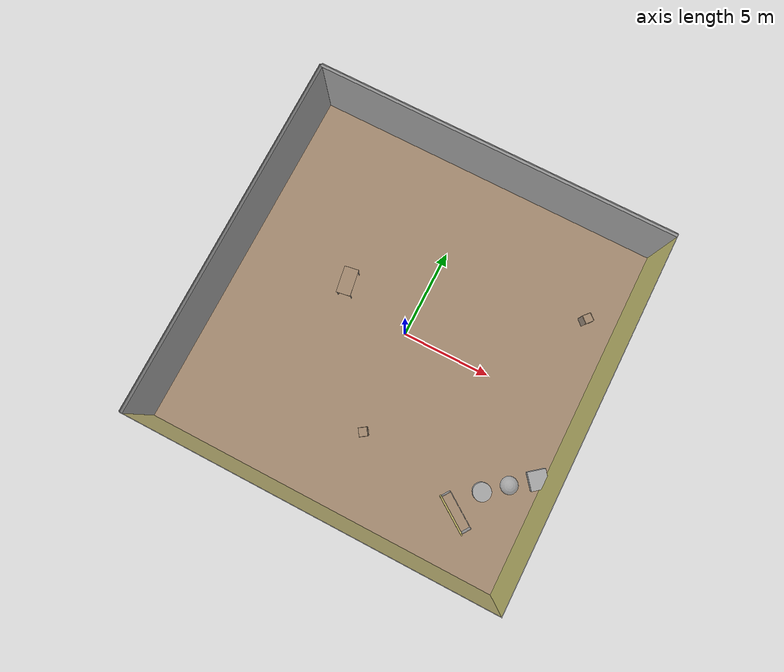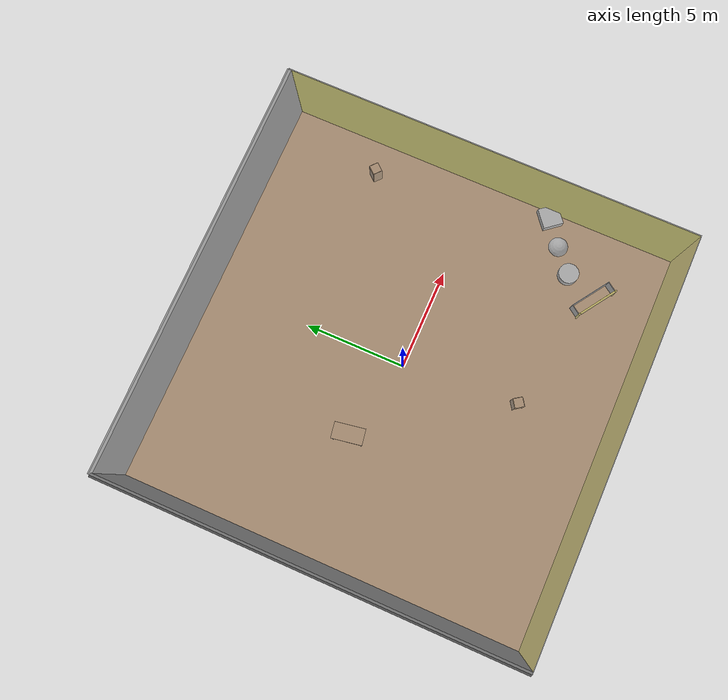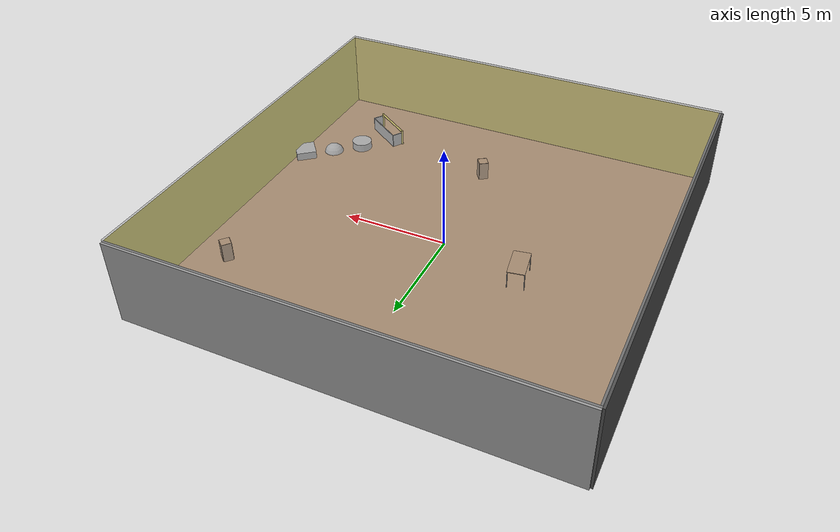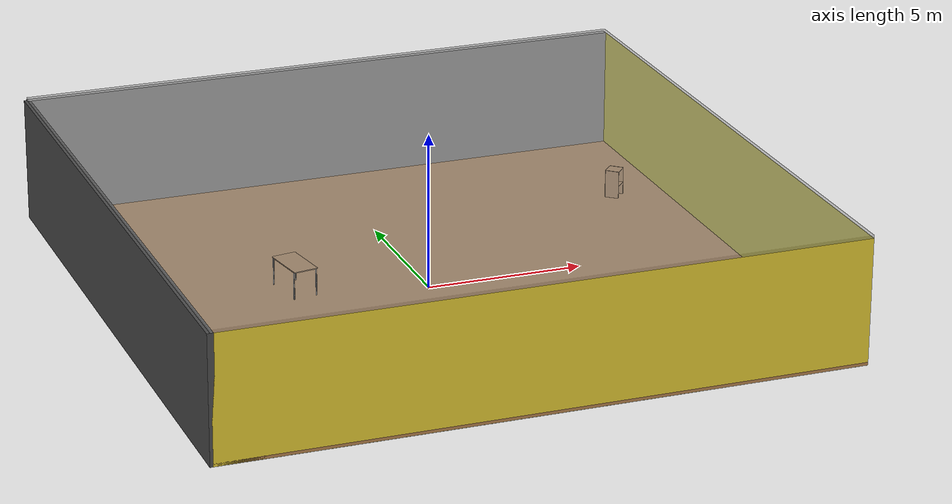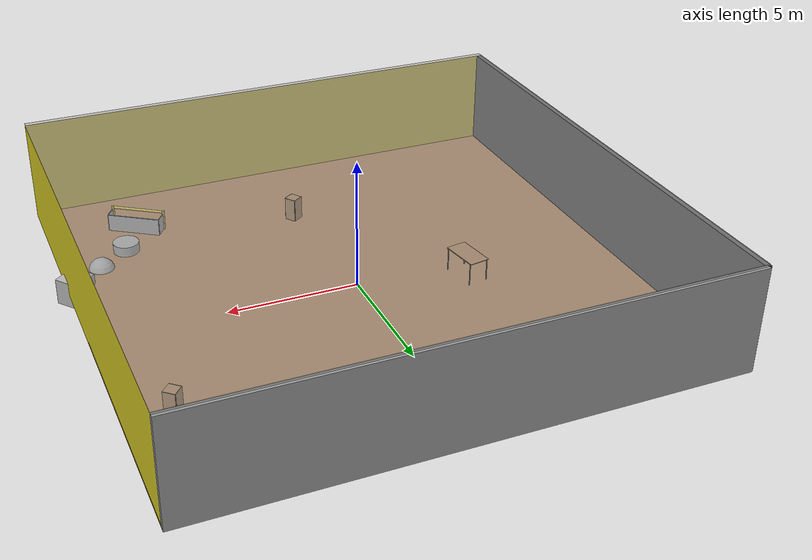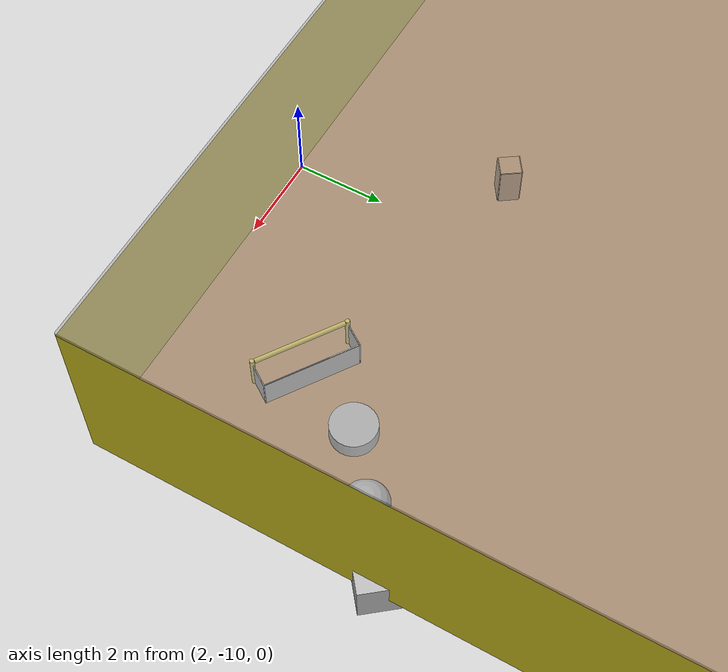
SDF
<sdf version="1.4">
 <world name="default">
  <physics type="ode">
   <max_step_size>0.001</max_step_size>
   <real_time_factor>1</real_time_factor>
   <real_time_update_rate>1000</real_time_update_rate>
   <gravity>0 0 -9.8</gravity>
  </physics>
  <scene><ambient>0.4 0.4 0.4 1</ambient><background>0.7 0.7 0.7 1</background><shadows>1</shadows></scene>
  <model name="Surrounding">
   <static>1</static>
   <link name="Ceiling">
    <collision name="Ceiling_Collision"><geometry><box><size>20 20 0.1</size></box></geometry></collision>
    <visual name="Ceiling_Visual">
     <geometry><box><size>20 20 0.1</size></box></geometry>
     <material>
      <script><uri>file://media/materials/scripts/gazebo.material</uri><name>Gazebo/GreyTransparent</name></script>
     </material>
    </visual>
    <pose>0 0 4.05 0 0 0</pose>
   </link>
   <link name="Wall_South">
    <collision name="Wall_South_Collision">
     <geometry><box><size>20 0 4</size></box></geometry>
     <pose>0 0 2 0 -0 0</pose>
    </collision>
    <visual name="Wall_South_Visual">
     <pose>0 0 2 0 -0 0</pose>
     <geometry><box><size>20 0 4</size></box></geometry>
     <material>
      <script><uri>file://media/materials/scripts/gazebo.material</uri><name>Gazebo/ZincYellow</name></script>
     </material>
    </visual>
    <velocity_decay><linear>0</linear><angular>0</angular></velocity_decay>
    <pose>0 -10 0 0 -0 0</pose>
   </link>
   <link name="Wall_East">
    <collision name="Wall_21_Collision">
     <geometry><box><size>20 0 4</size></box></geometry>
     <pose>0 0 2 0 -0 0</pose>
    </collision>
    <visual name="Wall_21_Visual">
     <pose>0 0 2 0 -0 0</pose>
     <geometry><box><size>20 0 4</size></box></geometry>
     <material>
      <script><uri>file://media/materials/scripts/gazebo.material</uri><name>Gazebo/YellowGlow</name></script>
     </material>
    </visual>
    <velocity_decay><linear>0</linear><angular>0</angular></velocity_decay>
    <pose>10 0 0 0 -0 1.5708</pose>
   </link>
   <link name="Wall_North">
    <collision name="Wall_22_Collision">
     <geometry><box><size>20 0.2 4</size></box></geometry>
     <pose>0 0 2 0 -0 0</pose>
    </collision>
    <visual name="Wall_22_Visual">
     <pose>0 0 2 0 -0 0</pose>
     <geometry><box><size>20 0.2 4</size></box></geometry>
     <material>
      <script><uri>file://media/materials/scripts/gazebo.material</uri><name>Gazebo/Grey</name></script>
     </material>
    </visual>
    <velocity_decay><linear>0</linear><angular>0</angular></velocity_decay>
    <pose>0 10 0 0 -0 0</pose>
   </link>
   <link name="Wall_West">
    <collision name="Wall_23_Collision">
     <geometry><box><size>20 0.2 4</size></box></geometry>
     <pose>0 0 2 0 -0 0</pose>
    </collision>
    <visual name="Wall_23_Visual">
     <pose>0 0 2 0 -0 0</pose>
     <geometry><box><size>20 0.2 4</size></box></geometry>
     <material>
      <script><uri>file://media/materials/scripts/gazebo.material</uri><name>Gazebo/DarkGrey</name></script>
     </material>
    </visual>
    <velocity_decay><linear>0</linear><angular>0</angular></velocity_decay>
    <pose>-10 0 0 0 0 -1.5708</pose>
   </link>
   <link name="Ground_link">
    <collision name="collision">
     <pose>0 0 .05 0 -0 0</pose>
     <geometry><box><size>20 20 0.1</size></box></geometry>
    </collision>
    <visual name="visual">
     <pose>0 0 .05 0 -0 0</pose>
     <geometry><box><size>20 20 0.1</size></box></geometry>
     <material>
      <script><uri>file://media/materials/scripts/gazebo.material</uri><name>Gazebo/WoodPallet</name></script>
     </material>
    </visual>
   </link>
   <static>1</static>
  </model>
  <spherical_coordinates>
   <surface_model>EARTH_WGS84</surface_model>
   <latitude_deg>0</latitude_deg>
   <longitude_deg>0</longitude_deg>
   <elevation>0</elevation>
   <heading_deg>0</heading_deg>
  </spherical_coordinates>
  <light name="lightball_0" type="diffuse">
   <diffuse>0.8 0.8 0.8 1</diffuse>
   <specular>0.2 0.2 0.2 1</specular>
   <attenuation>
    <range>100</range>
    <constant>0.7</constant>
    <linear>0.01</linear>
    <quadratic>0.001</quadratic>
   </attenuation>
   <direction>-0.5 0.1 -0.9</direction>
   <pose>6.43262450957 5.96016831397 2.494829545 0 0 0</pose>
  </light>
  <light name="lightball_1" type="diffuse">
   <diffuse>0.8 0.8 0.8 1</diffuse>
   <specular>0.2 0.2 0.2 1</specular>
   <attenuation>
    <range>100</range>
    <constant>0.7</constant>
    <linear>0.01</linear>
    <quadratic>0.001</quadratic>
   </attenuation>
   <direction>-0.5 0.1 -0.9</direction>
   <pose>-8.05185437811 -5.92499719026 0.788065136809 0 0 0</pose>
  </light>
  <include><uri>model://table</uri><pose>-4.00728819912 1.01393357307 0 0 0 1.73509317814</pose></include>
  <include><uri>model://cabinet</uri><pose>0.447519896316 -5.6726218755 0 0 0 0.601041193298</pose></include>
  <include>
   <uri>model://robocup_3Dsim_goal</uri>
   <pose>6.40762640393 -7.35239604798 0 0 0 0.975873565429</pose>
  </include>
  <include>
   <uri>model://textured_shapes</uri>
   <pose>8.50582188692 -4.65084316496 0 0 0 2.24841864071</pose>
  </include>
  <include><uri>model://cabinet</uri><pose>8.32828069917 5.05657609713 0 0 0 2.41790148798</pose></include>
 </world>
</sdf>

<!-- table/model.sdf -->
<sdf version="1.5">
  <model name="table">
    <static>true</static>
    <link name="link">
      <collision name="surface">
        <pose>0 0 1.0 0 0 0</pose>
        <geometry>
          <box>
            <size>1.5 0.8 0.03</size>
          </box>
        </geometry>
        <surface>
          <friction>
            <ode>
              <mu>0.6</mu>
              <mu2>0.6</mu2>
            </ode>
          </friction>
        </surface>
      </collision>
      <visual name="visual1">
        <pose>0 0 1.0 0 0 0</pose>
        <geometry>
          <box>
            <size>1.5 0.8 0.03</size>
          </box>
        </geometry>
        <material>
          <script>
            <uri>model://media/materials/scripts/gazebo.material</uri>
            <name>Gazebo/Wood</name>
          </script>
        </material>
      </visual>
      <collision name="front_left_leg">
        <pose>0.68 0.38 0.5 0 0 0</pose>
        <geometry>
          <cylinder>
            <radius>0.02</radius>
            <length>1.0</length>
          </cylinder>
        </geometry>
      </collision>
      <visual name="front_left_leg">
        <pose>0.68 0.38 0.5 0 0 0</pose>
        <geometry>
          <cylinder>
            <radius>0.02</radius>
            <length>1.0</length>
          </cylinder>
        </geometry>
        <material>
          <script>
            <uri>model://media/materials/scripts/gazebo.material</uri>
            <name>Gazebo/Grey</name>
          </script>
        </material>
      </visual>
      <collision name="front_right_leg">
        <pose>0.68 -0.38 0.5 0 0 0</pose>
        <geometry>
          <cylinder>
            <radius>0.02</radius>
            <length>1.0</length>
          </cylinder>
        </geometry>
      </collision>
      <visual name="front_right_leg">
        <pose>0.68 -0.38 0.5 0 0 0</pose>
        <geometry>
          <cylinder>
            <radius>0.02</radius>
            <length>1.0</length>
          </cylinder>
        </geometry>
        <material>
          <script>
            <uri>model://media/materials/scripts/gazebo.material</uri>
            <name>Gazebo/Grey</name>
          </script>
        </material>
      </visual>
      <collision name="back_right_leg">
        <pose>-0.68 -0.38 0.5 0 0 0</pose>
        <geometry>
          <cylinder>
            <radius>0.02</radius>
            <length>1.0</length>
          </cylinder>
        </geometry>
      </collision>
      <visual name="back_right_leg">
        <pose>-0.68 -0.38 0.5 0 0 0</pose>
        <geometry>
          <cylinder>
            <radius>0.02</radius>
            <length>1.0</length>
          </cylinder>
        </geometry>
        <material>
          <script>
            <uri>model://media/materials/scripts/gazebo.material</uri>
            <name>Gazebo/Grey</name>
          </script>
        </material>
      </visual>
      <collision name="back_left_leg">
        <pose>-0.68 0.38 0.5 0 0 0</pose>
        <geometry>
          <cylinder>
            <radius>0.02</radius>
            <length>1.0</length>
          </cylinder>
        </geometry>
      </collision>
      <visual name="back_left_leg">
        <pose>-0.68 0.38 0.5 0 0 0</pose>
        <geometry>
          <cylinder>
            <radius>0.02</radius>
            <length>1.0</length>
          </cylinder>
        </geometry>
        <material>
          <script>
            <uri>model://media/materials/scripts/gazebo.material</uri>
            <name>Gazebo/Grey</name>
          </script>
        </material>
      </visual>
    </link>
  </model>
</sdf>

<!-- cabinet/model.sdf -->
<sdf version="1.5">
  <model name="cabinet">
    <static>true</static>
    <link name="cabinet_bottom_plate">
      <inertial>
        <pose>0 0 -1 0 0 0</pose>
        <inertia>
          <ixx>2.050000</ixx>
          <ixy>0</ixy>
          <ixz>0</ixz>
          <iyy>2.050000</iyy>
          <iyz>0</iyz>
          <izz>2.050000</izz>
        </inertia>
        <mass>25.000000</mass>
      </inertial>
      <collision name="cabinet_bottom_plate_geom">
        <pose>0 0 0.010000 0 0 0</pose>
        <geometry>
          <box>
            <size>0.450000 0.450000 0.020000</size>
          </box>
        </geometry>
      </collision>
      <visual name="cabinet_bottom_plate_geom_visual">
        <pose>0 0 0.010000 0 0 0</pose>
        <geometry>
          <box>
            <size>0.450000 0.450000 0.020000</size>
          </box>
        </geometry>
        <material>
          <script>
            <uri>model://media/materials/scripts/gazebo.material</uri>
            <name>Gazebo/Wood</name>
          </script>
        </material>
      </visual>
      <collision name="cabinet_bottom_plate_geom_cabinet_back_plate">
        <pose>0.235000 0 0.510000 0 0 0</pose>
        <geometry>
          <box>
            <size>0.020000 0.450000 1.020000</size>
          </box>
        </geometry>
      </collision>
      <visual name="cabinet_bottom_plate_geom_cabinet_back_plate_visual">
        <pose>0.235000 0 0.510000 0 0 0</pose>
        <geometry>
          <box>
            <size>0.020000 0.450000 1.020000</size>
          </box>
        </geometry>
        <material>
          <script>
            <uri>model://media/materials/scripts/gazebo.material</uri>
            <name>Gazebo/Wood</name>
          </script>
        </material>
      </visual>
      <collision name="cabinet_bottom_plate_geom_cabinet_left_plate">
        <pose>0 0.235000 0.510000 0 0 0</pose>
        <geometry>
          <box>
            <size>0.450000 0.020000 1.020000</size>
          </box>
        </geometry>
      </collision>
      <visual name="cabinet_bottom_plate_geom_cabinet_left_plate_visual">
        <pose>0 0.235000 0.510000 0 0 0</pose>
        <geometry>
          <box>
            <size>0.450000 0.020000 1.020000</size>
          </box>
        </geometry>
        <material>
          <script>
            <uri>model://media/materials/scripts/gazebo.material</uri>
            <name>Gazebo/Wood</name>
          </script>
        </material>
      </visual>
      <collision name="cabinet_bottom_plate_geom_cabinet_middle_plate">
        <pose>0 0 0.510000 0 0 0</pose>
        <geometry>
          <box>
            <size>0.450000 0.450000 0.020000</size>
          </box>
        </geometry>
      </collision>
      <visual name="cabinet_bottom_plate_geom_cabinet_middle_plate_visual">
        <pose>0 0 0.510000 0 0 0</pose>
        <geometry>
          <box>
            <size>0.450000 0.450000 0.020000</size>
          </box>
        </geometry>
        <material>
          <script>
            <uri>model://media/materials/scripts/gazebo.material</uri>
            <name>Gazebo/Wood</name>
          </script>
        </material>
      </visual>
      <collision name="cabinet_bottom_plate_geom_cabinet_right_plate">
        <pose>0 -0.235000 0.510000 0 0 0</pose>
        <geometry>
          <box>
            <size>0.450000 0.020000 1.020000</size>
          </box>
        </geometry>
      </collision>
      <visual name="cabinet_bottom_plate_geom_cabinet_right_plate_visual">
        <pose>0 -0.235000 0.510000 0 0 0</pose>
        <geometry>
          <box>
            <size>0.450000 0.020000 1.020000</size>
          </box>
        </geometry>
        <material>
          <script>
            <uri>model://media/materials/scripts/gazebo.material</uri>
            <name>Gazebo/Wood</name>
          </script>
        </material>
      </visual>
      <collision name="cabinet_bottom_plate_geom_cabinet_top_plate">
        <pose>0 0 1.010000 0 0 0</pose>
        <geometry>
          <box>
            <size>0.450000 0.450000 0.020000</size>
          </box>
        </geometry>
      </collision>
      <visual name="cabinet_bottom_plate_geom_cabinet_top_plate_visual">
        <pose>0 0 1.010000 0 0 0</pose>
        <geometry>
          <box>
            <size>0.450000 0.450000 0.020000</size>
          </box>
        </geometry>
        <material>
          <script>
            <uri>model://media/materials/scripts/gazebo.material</uri>
            <name>Gazebo/Wood</name>
          </script>
        </material>
      </visual>
    </link>
  </model>
</sdf>

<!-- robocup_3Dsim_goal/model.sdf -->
<sdf version="1.5">
  <model name="robocup_3d_goal">
    <static>true</static>
    <link name="left_post">
      <pose>0 1.05 0.45 0 0 0</pose>
      <collision name="collision">
        <geometry>
          <cylinder>
            <radius>0.05</radius>
            <length>0.9</length>
          </cylinder>
        </geometry>
      </collision>
      <visual name="visual">
        <geometry>
          <cylinder>
            <radius>0.05</radius>
            <length>0.9</length>
          </cylinder>
        </geometry>
        <material>
          <script>
            <uri>file://media/materials/scripts/gazebo.material</uri>
            <name>Gazebo/ZincYellow</name>
          </script>
        </material>
      </visual>
    </link>
    <link name="left_support_horiz_lower">
      <pose>0.30 1.05 0.01 0 0 0</pose>
      <collision name="collision">
        <geometry>
          <box>
            <size>0.50 0.02 0.02</size>
          </box>
        </geometry>
      </collision>
      <visual name="visual">
        <geometry>
          <box>
            <size>0.50 0.02 0.02</size>
          </box>
        </geometry>
        <material>
          <script>
            <uri>file://media/materials/scripts/gazebo.material</uri>
            <name>Gazebo/White</name>
          </script>
        </material>
      </visual>
    </link>
    <link name="left_support_horiz_upper">
      <pose>0.30 1.05 0.79 0 0 0</pose>
      <collision name="collision">
        <geometry>
          <box>
            <size>0.50 0.02 0.02</size>
          </box>
        </geometry>
      </collision>
      <visual name="visual">
        <geometry>
          <box>
            <size>0.50 0.02 0.02</size>
          </box>
        </geometry>
        <material>
          <script>
            <uri>file://media/materials/scripts/gazebo.material</uri>
            <name>Gazebo/White</name>
          </script>
        </material>
      </visual>
    </link>
    <link name="left_support_vertical">
      <pose>0.56 1.05 0.4 0 1.5708 0</pose>
      <collision name="collision">
        <geometry>
          <box>
            <size>0.80 0.02 0.02</size>
          </box>
        </geometry>
      </collision>
      <visual name="visual">
        <geometry>
          <box>
            <size>0.80 0.02 0.02</size>
          </box>
        </geometry>
        <material>
          <script>
            <uri>file://media/materials/scripts/gazebo.material</uri>
            <name>Gazebo/White</name>
          </script>
        </material>
      </visual>
    </link>
    <link name="right_support_horiz_lower">
      <pose>0.30 -1.05 0.01 0 0 0</pose>
      <collision name="collision">
        <geometry>
          <box>
            <size>0.50 0.02 0.02</size>
          </box>
        </geometry>
      </collision>
      <visual name="visual">
        <geometry>
          <box>
            <size>0.50 0.02 0.02</size>
          </box>
        </geometry>
        <material>
          <script>
            <uri>file://media/materials/scripts/gazebo.material</uri>
            <name>Gazebo/White</name>
          </script>
        </material>
      </visual>
    </link>
    <link name="right_support_horiz_upper">
      <pose>0.30 -1.05 0.79 0 0 0</pose>
      <collision name="collision">
        <geometry>
          <box>
            <size>0.50 0.02 0.02</size>
          </box>
        </geometry>
      </collision>
      <visual name="visual">
        <geometry>
          <box>
            <size>0.50 0.02 0.02</size>
          </box>
        </geometry>
        <material>
          <script>
            <uri>file://media/materials/scripts/gazebo.material</uri>
            <name>Gazebo/White</name>
          </script>
        </material>
      </visual>
    </link>
    <link name="right_support_vertical">
      <pose>0.56 -1.05 0.4 0 1.5708 0</pose>
      <collision name="collision">
        <geometry>
          <box>
            <size>0.80 0.02 0.02</size>
          </box>
        </geometry>
      </collision>
      <visual name="visual">
        <geometry>
          <box>
            <size>0.80 0.02 0.02</size>
          </box>
        </geometry>
        <material>
          <script>
            <uri>file://media/materials/scripts/gazebo.material</uri>
            <name>Gazebo/White</name>
          </script>
        </material>
      </visual>
    </link>
    <link name="center_support_horiz_lower">
      <pose>0.56 0 0.01 0 1.5708 0</pose>
      <collision name="collision">
        <geometry>
          <box>
            <size>0.02 2.08 0.02</size>
          </box>
        </geometry>
      </collision>
      <visual name="visual">
        <geometry>
          <box>
            <size>0.02 2.08 0.02</size>
          </box>
        </geometry>
        <material>
          <script>
            <uri>file://media/materials/scripts/gazebo.material</uri>
            <name>Gazebo/White</name>
          </script>
        </material>
      </visual>
    </link>
    <link name="center_support_horiz_upper">
      <pose>0.56 0 0.79 0 1.5708 0</pose>
      <collision name="collision">
        <geometry>
          <box>
            <size>0.02 2.08 0.02</size>
          </box>
        </geometry>
      </collision>
      <visual name="visual">
        <geometry>
          <box>
            <size>0.02 2.08 0.02</size>
          </box>
        </geometry>
        <material>
          <script>
            <uri>file://media/materials/scripts/gazebo.material</uri>
            <name>Gazebo/White</name>
          </script>
        </material>
      </visual>
    </link>
    <link name="right_post">
      <pose>0 -1.05 0.45 0 0 0</pose>
      <collision name="collision">
        <geometry>
          <cylinder>
            <radius>0.05</radius>
            <length>0.9</length>
          </cylinder>
        </geometry>
      </collision>
      <visual name="visual">
        <geometry>
          <cylinder>
            <radius>0.05</radius>
            <length>0.9</length>
          </cylinder>
        </geometry>
        <material>
          <script>
            <uri>file://media/materials/scripts/gazebo.material</uri>
            <name>Gazebo/ZincYellow</name>
          </script>
        </material>
      </visual>
    </link>
    <link name="crossbar">
      <pose>0 0 0.85 1.57 1.57 0</pose>
      <collision name="collision">
        <geometry>
          <cylinder>
            <radius>0.05</radius>
            <length>2.0</length>
          </cylinder>
        </geometry>
      </collision>
      <visual name="visual">
        <geometry>
          <cylinder>
            <radius>0.05</radius>
            <length>2.0</length>
          </cylinder>
        </geometry>
        <material>
          <script>
            <uri>file://media/materials/scripts/gazebo.material</uri>
            <name>Gazebo/ZincYellow</name>
          </script>
        </material>
      </visual>
    </link>
    <link name="center_net">
      <pose>0.56 0 0.40 0 0 0</pose>
      <collision name="collision">
        <geometry>
          <box>
            <size>0.01 2.1 0.80</size>
          </box>
        </geometry>
      </collision>
      <visual name="visual">
        <geometry>
          <box>
            <size>0.01 2.1 0.80</size>
          </box>
        </geometry>
        <material>
          <script>
            <uri>model://../model_source/models/robocup09_spl_field/materials/scripts/</uri>
            <uri>model://../model_source/models/robocup09_spl_field/materials/textures/</uri>
            <name>RoboCup/Net</name>
          </script>
        </material>
      </visual>
    </link>
    <link name="left_net">
      <pose>0.30 1.05 0.40 0 0 0</pose>
      <collision name="collision">
        <geometry>
          <box>
            <size>0.50 0.01 0.76</size>
          </box>
        </geometry>
      </collision>
      <visual name="visual">
        <geometry>
          <box>
            <size>0.50 0.01 0.76</size>
          </box>
        </geometry>
        <material>
          <script>
            <uri>model://../model_source/models/robocup09_spl_field/materials/scripts/</uri>
            <uri>model://../model_source/models/robocup09_spl_field/materials/textures/</uri>
            <name>RoboCup/Net</name>
          </script>
        </material>
      </visual>
    </link>
    <link name="right_net">
      <pose>0.30 -1.05 0.40 0 0 0</pose>
      <collision name="collision">
        <geometry>
          <box>
            <size>0.50 0.01 0.76</size>
          </box>
        </geometry>
      </collision>
      <visual name="visual">
        <geometry>
          <box>
            <size>0.50 0.01 0.76</size>
          </box>
        </geometry>
        <material>
          <script>
            <uri>model://../model_source/models/robocup09_spl_field/materials/scripts/</uri>
            <uri>model://../model_source/models/robocup09_spl_field/materials/textures/</uri>
            <name>RoboCup/Net</name>
          </script>
        </material>
      </visual>
    </link>
  </model>
</sdf>

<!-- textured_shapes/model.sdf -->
<sdf version="1.6">
  <model name="textured_shapes">
    <pose>0 0 0.5 0 0 0</pose>
    <link name="box">
      <pose>0 -1.5 0 0 0 0</pose>
      <collision name="collision">
        <geometry>
          <box>
            <size>1 1 1</size>
          </box>
        </geometry>
      </collision>
      <visual name="visual">
        <geometry>
          <box>
            <size>1 1 1</size>
          </box>
        </geometry>
        <material>
          <script>
            <uri>model://../model_source/models/textured_shapes/materials/scripts</uri>
            <uri>model://../model_source/models/textured_shapes/materials/textures</uri>
            <name>TexturedShape/Squares</name>
          </script>
        </material>
      </visual>
    </link>
    <link name="sphere">
      <collision name="collision">
        <geometry>
          <sphere>
            <radius>0.5</radius>
          </sphere>
        </geometry>
      </collision>
      <visual name="visual">
        <geometry>
          <sphere>
            <radius>0.5</radius>
          </sphere>
        </geometry>
        <material>
          <script>
            <uri>model://../model_source/models/textured_shapes/materials/scripts</uri>
            <uri>model://../model_source/models/textured_shapes/materials/textures</uri>
            <name>TexturedShape/Squares</name>
          </script>
        </material>
      </visual>
    </link>
    <link name="cylinder">
      <pose>0 1.5 0 0 0 0</pose>
      <collision name="collision">
        <geometry>
          <cylinder>
            <radius>0.5</radius>
            <length>1</length>
          </cylinder>
        </geometry>
      </collision>
      <visual name="visual">
        <geometry>
          <cylinder>
            <radius>0.5</radius>
            <length>1</length>
          </cylinder>
        </geometry>
        <material>
          <script>
            <uri>model://../model_source/models/textured_shapes/materials/scripts</uri>
            <uri>model://../model_source/models/textured_shapes/materials/textures</uri>
            <name>TexturedShape/Squares</name>
          </script>
        </material>
      </visual>
    </link>
  </model>
</sdf>
